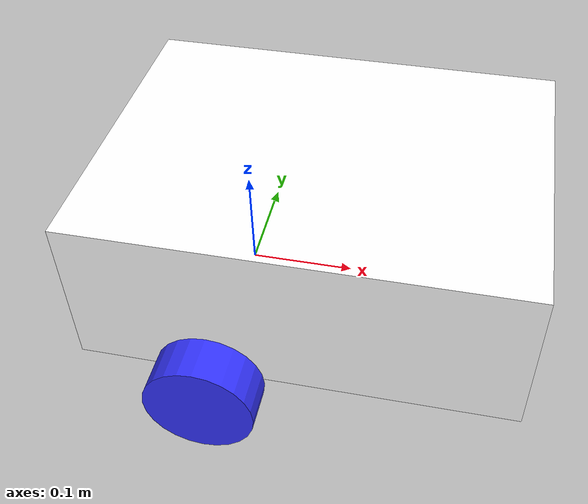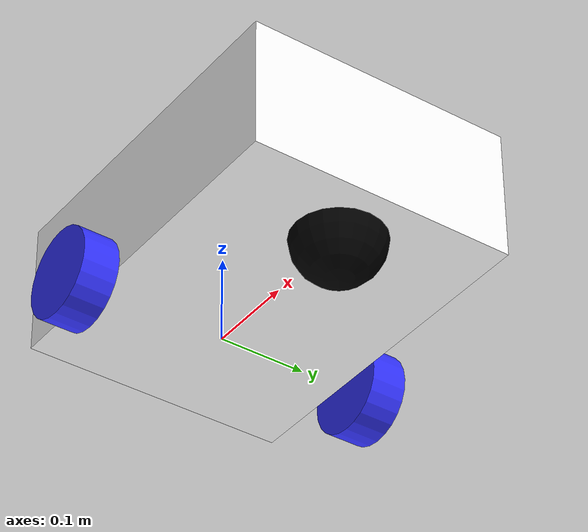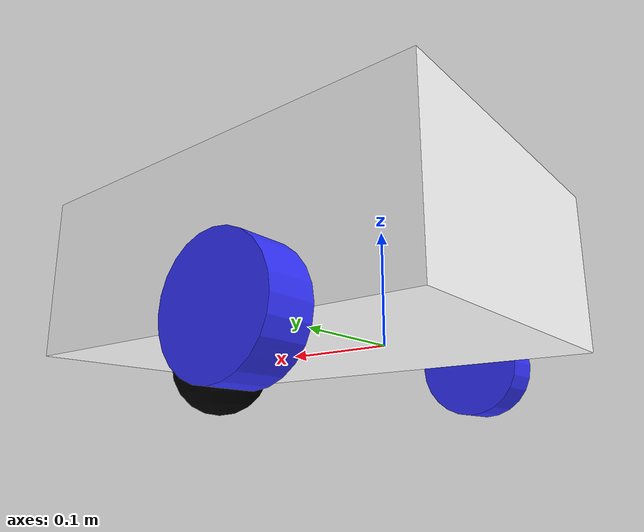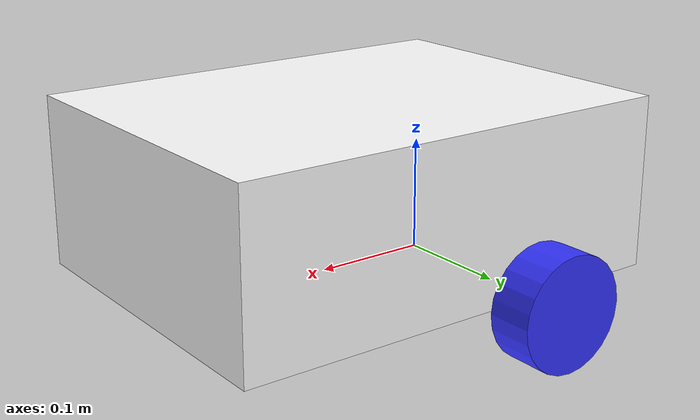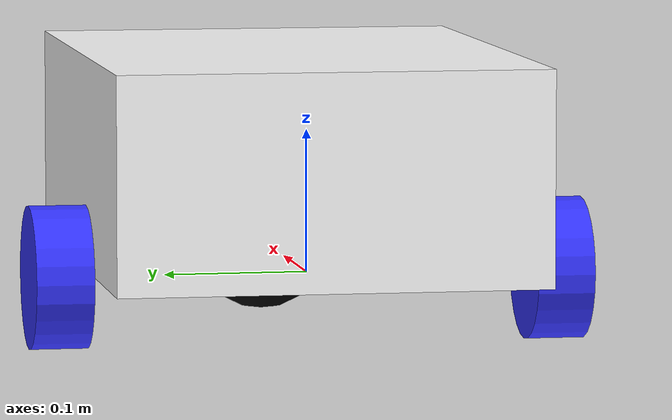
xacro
<?xml version="1.0"?>
<robot xmlns:xacro="http://www.ros.org/wiki/xacro" >

    <xacro:include filename="inertial_macros.xacro"/>

    <material name="white">
        <color rgba="1 1 1 1"/>
    </material>

    <material name="orange">
        <color rgba="1 0.3 0.1 1"/>
    </material>

    <material name="blue">
        <color rgba="0.2 0.2 1 1"/>
    </material>

    <material name="black">
        <color rgba="0 0 0 1"/>
    </material>

    <material name="red">
        <color rgba="1 0 0 1"/>
    </material>

    <!-- Base link -->
    <link name="base_link">
    </link>

    <!-- chassis link -->
    <joint name="chassis_joint" type="fixed">
        <parent link="base_link"/>
        <child link="chassis"/>
        <origen xyz="-0.1 0 0"/>
    </joint>

    <link name="chassis">
        <visual>
            <origin xyz="0.075 0 0.075" rpy="0 0 0"/>
            <geometry>
                <box size="0.4 0.3 0.15"/>
            </geometry>
            <material name="white"/>
        </visual>

        <collision>
            <origin xyz="0.075 0 0.075" rpy="0 0 0"/>
            <geometry>
                <box size="0.4 0.3 0.15"/>
            </geometry>
        </collision>
        <xacro:inertial_box mass="0.5" x="0.3" y="0.3" z="0.15">
            <origen xyz="0.15 0 0.075" rpy="0 0 0"/>
        </xacro:inertial_box>

    </link>

    <gazebo reference="chassis">
        <material>Gazebo/White</material>
    </gazebo>

    <!-- Left wheel Link -->
    <joint name="left_wheel_joint" type="continuous">
        <parent link="base_link"/>
        <child link="left_wheel"/>
        <origin xyz="0.0 0.175 0.0" rpy="-${pi/2} 0 0" />
        <axis xyz="0 0 1"/>
    </joint>

    <link name="left_wheel">
        <visual>
            <geometry>
                <cylinder radius="0.05" length="0.04"/>
            </geometry>
            <material name="blue"/>
        </visual>

        <collision>
            <geometry>
                <cylinder radius="0.05" length="0.04"/>
            </geometry>
        </collision>
        <xacro:inertial_cylinder mass="0.1" length="0.04" radius="0.05">
            <origen xyz="0 0 0" rpy="0 0 0"/>
        </xacro:inertial_cylinder>
    </link>
    <gazebo reference="left_wheel">
        <material>Gazebo/Blue</material>
    </gazebo>

    <!-- Right wheel Link -->
    <joint name="right_wheel_joint" type="continuous">
        <parent link="base_link"/>
        <child link="right_wheel"/>
        <origin xyz="0.0 -0.175 0.0" rpy="${pi/2} 0 0" />
        <axis xyz="0 0 -1"/>
    </joint>

    <link name="right_wheel">
        <visual>

            <geometry>
                <cylinder radius="0.05" length="0.04"/>
            </geometry>
            <material name="blue"/>
        </visual>
        <collision>
            <geometry>
                <cylinder radius="0.05" length="0.04"/>
            </geometry>
        </collision>
        <xacro:inertial_cylinder mass="0.1" length="0.04" radius="0.05">
            <origen xyz="0 0 0" rpy="0 0 0"/>
        </xacro:inertial_cylinder>
    </link>

    <gazebo reference="right_wheel">
        <material>Gazebo/Blue</material>
    </gazebo>

    <!-- Caster wheel Link -->
    <joint name="caser_wheel_joint" type="fixed">
        <parent link="chassis"/>
        <child link="caster_wheel"/>
        <origin xyz="0.2 0 0 " rpy="0 0 0" />
    </joint>

    <link name="caster_wheel">
        <visual>
            <geometry>
                <sphere radius="0.05"/>
            </geometry>
            <material name="black"/>
        </visual>
        <collision>
            <geometry>
                <sphere radius="0.05"/>
            </geometry>
            <material name="black"/>
        </collision>
        <xacro:inertial_sphere mass="0.1" radius="0.05">
            <origen xyz="0 0 0" rpy="0 0 0"/>
        </xacro:inertial_sphere>
    </link>
    <gazebo reference="caster_wheel">
        <material>Gazebo/Black</material>
        <mu1 value="0.3"/>
        <mu2 value="0.1"/>
    </gazebo>

</robot>
